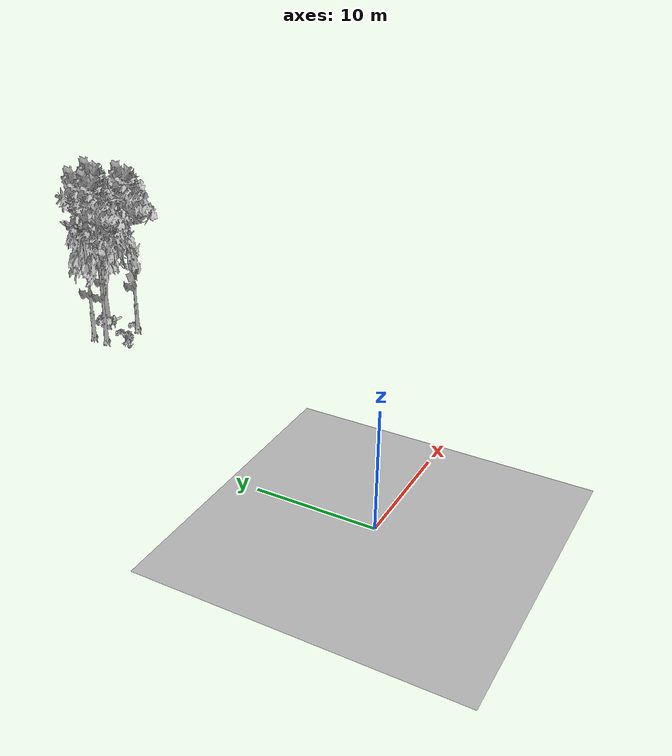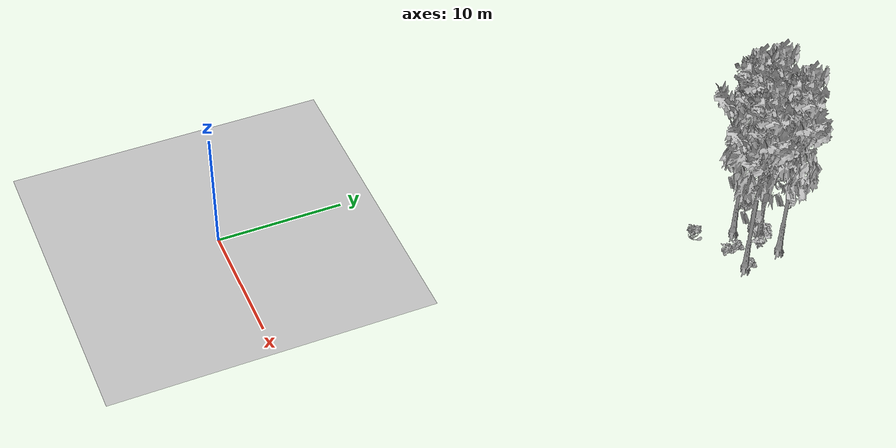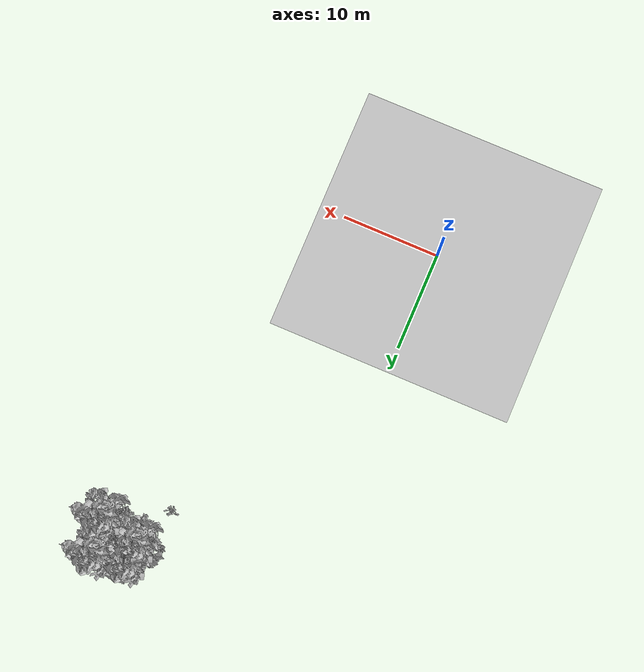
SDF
<sdf version="1.7">
 <world name="default">
  <model name="ground_plane">
   <static>1</static>
   <link name="link">
    <collision name="collision">
     <pose>-50 0 0 0 -0 0</pose>
     <geometry><plane><normal>0 0 1</normal><size>80 80</size></plane></geometry>
     <surface><contact><ode><min_depth>0.01</min_depth><max_vel>0</max_vel></ode></contact></surface>
    </collision>
    <visual name="grass">
     <cast_shadows>0</cast_shadows>
     <geometry>
      <mesh>
       <scale>0.46714285714285714 0.46714285714285714 0.1</scale>
       <uri>file://grass_plane/meshes/grass_plane.dae</uri>
      </mesh>
     </geometry>
    </visual>
   </link>
  </model>
  <model name="Tree 12">
   <static>1</static>
   <pose>14.566853276227931 36.42362300159266 0 1.57079 -0 0</pose>
   <link name="link">
    <collision name="collision">
     <geometry><mesh><scale>3.5 5 3.5</scale><uri>model://tree_9/meshes/tree_9.obj</uri></mesh></geometry>
    </collision>
    <visual name="visual">
     <geometry><mesh><scale>3.5 5 3.5</scale><uri>model://tree_9/meshes/tree_9.obj</uri></mesh></geometry>
    </visual>
   </link>
  </model>
  <model name="Tree 157">
   <static>1</static>
   <pose>18.214230341562796 35.336991015078056 0 1.57079 -0 0</pose>
   <link name="link">
    <collision name="collision">
     <geometry><mesh><scale>3.5 5 3.5</scale><uri>model://tree_9/meshes/tree_9.obj</uri></mesh></geometry>
    </collision>
    <visual name="visual">
     <geometry><mesh><scale>3.5 5 3.5</scale><uri>model://tree_9/meshes/tree_9.obj</uri></mesh></geometry>
    </visual>
   </link>
  </model>
  <model name="Tree 250">
   <static>1</static>
   <pose>14.653513582265496 38.04787762502798 0 1.57079 -0 0</pose>
   <link name="link">
    <collision name="collision">
     <geometry><mesh><scale>3.5 5 3.5</scale><uri>model://tree_9/meshes/tree_9.obj</uri></mesh></geometry>
    </collision>
    <visual name="visual">
     <geometry><mesh><scale>3.5 5 3.5</scale><uri>model://tree_9/meshes/tree_9.obj</uri></mesh></geometry>
    </visual>
   </link>
  </model>
  <model name="Tree 443">
   <static>1</static>
   <pose>16.262966665618805 37.54334903321373 0 1.57079 -0 0</pose>
   <link name="link">
    <collision name="collision">
     <geometry><mesh><scale>3.5 5 3.5</scale><uri>model://tree_2/meshes/tree_2.obj</uri></mesh></geometry>
    </collision>
    <visual name="visual">
     <geometry><mesh><scale>3.5 5 3.5</scale><uri>model://tree_2/meshes/tree_2.obj</uri></mesh></geometry>
    </visual>
   </link>
  </model>
  <model name="Tree 540">
   <static>1</static>
   <pose>17.603259712784094 38.636091256313975 0 1.57079 -0 0</pose>
   <link name="link">
    <collision name="collision">
     <geometry><mesh><scale>3.5 5 3.5</scale><uri>model://tree_9/meshes/tree_9.obj</uri></mesh></geometry>
    </collision>
    <visual name="visual">
     <geometry><mesh><scale>3.5 5 3.5</scale><uri>model://tree_9/meshes/tree_9.obj</uri></mesh></geometry>
    </visual>
   </link>
  </model>
  <model name="Bush 146">
   <static>1</static>
   <pose>16.10046433107346 35.86000312895369 0 1.57079 -0 0</pose>
   <link name="link">
    <collision name="collision">
     <geometry><mesh><scale>2 2 2</scale><uri>model://bush_2/meshes/bush_2.obj</uri></mesh></geometry>
     <surface><contact><collide_without_contact>false</collide_without_contact></contact></surface>
    </collision>
    <visual name="visual">
     <geometry><mesh><scale>2 2 2</scale><uri>model://bush_2/meshes/bush_2.obj</uri></mesh></geometry>
    </visual>
   </link>
  </model>
  <model name="Bush 174">
   <static>1</static>
   <pose>16.11901603993794 34.97476311771001 0 1.57079 -0 0</pose>
   <link name="link">
    <collision name="collision">
     <geometry><mesh><scale>2 2 2</scale><uri>model://bush_2/meshes/bush_2.obj</uri></mesh></geometry>
     <surface><contact><collide_without_contact>false</collide_without_contact></contact></surface>
    </collision>
    <visual name="visual">
     <geometry><mesh><scale>2 2 2</scale><uri>model://bush_2/meshes/bush_2.obj</uri></mesh></geometry>
    </visual>
   </link>
  </model>
  <model name="Bush 325">
   <static>1</static>
   <pose>16.090672841000178 37.67782250870515 0 1.57079 -0 0</pose>
   <link name="link">
    <collision name="collision">
     <geometry><mesh><scale>2 2 2</scale><uri>model://bush_1/meshes/bush_1.obj</uri></mesh></geometry>
     <surface><contact><collide_without_contact>false</collide_without_contact></contact></surface>
    </collision>
    <visual name="visual">
     <geometry><mesh><scale>2 2 2</scale><uri>model://bush_1/meshes/bush_1.obj</uri></mesh></geometry>
    </visual>
   </link>
  </model>
  <model name="Bush 512">
   <static>1</static>
   <pose>14.02660551404832 33.137298577993946 0 1.57079 -0 0</pose>
   <link name="link">
    <collision name="collision">
     <geometry><mesh><scale>2 2 2</scale><uri>model://bush_4/meshes/bush_4.obj</uri></mesh></geometry>
     <surface><contact><collide_without_contact>false</collide_without_contact></contact></surface>
    </collision>
    <visual name="visual">
     <geometry><mesh><scale>2 2 2</scale><uri>model://bush_4/meshes/bush_4.obj</uri></mesh></geometry>
    </visual>
   </link>
  </model>
  <model name="Bush 612">
   <static>1</static>
   <pose>18.106995533506414 35.77713822999675 0 1.57079 -0 0</pose>
   <link name="link">
    <collision name="collision">
     <geometry><mesh><scale>2 2 2</scale><uri>model://bush_2/meshes/bush_2.obj</uri></mesh></geometry>
     <surface><contact><collide_without_contact>false</collide_without_contact></contact></surface>
    </collision>
    <visual name="visual">
     <geometry><mesh><scale>2 2 2</scale><uri>model://bush_2/meshes/bush_2.obj</uri></mesh></geometry>
    </visual>
   </link>
  </model>
  <model name="Bush 636">
   <static>1</static>
   <pose>16.911585813028196 37.193259829343006 0 1.57079 -0 0</pose>
   <link name="link">
    <collision name="collision">
     <geometry><mesh><scale>2 2 2</scale><uri>model://bush_0/meshes/bush_0.obj</uri></mesh></geometry>
     <surface><contact><collide_without_contact>false</collide_without_contact></contact></surface>
    </collision>
    <visual name="visual">
     <geometry><mesh><scale>2 2 2</scale><uri>model://bush_0/meshes/bush_0.obj</uri></mesh></geometry>
    </visual>
   </link>
  </model>
 </world>
</sdf>
